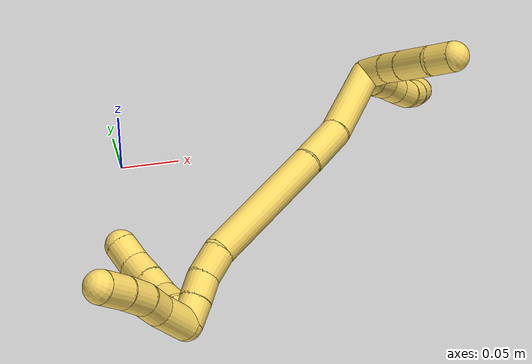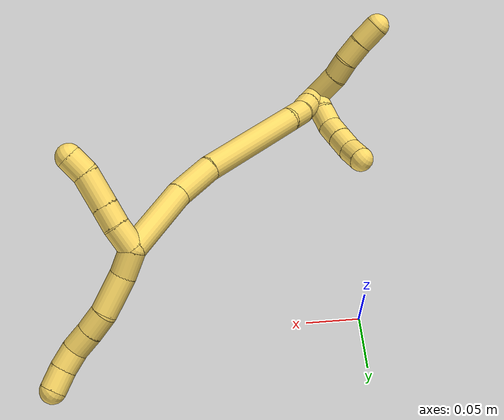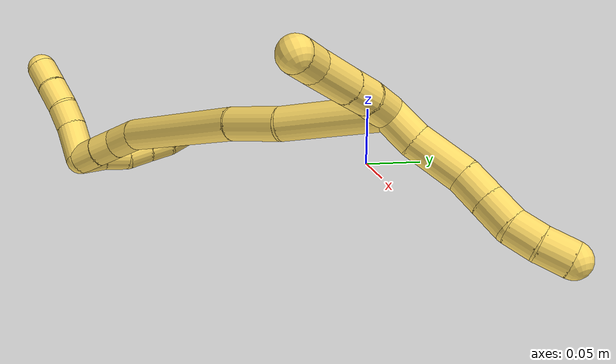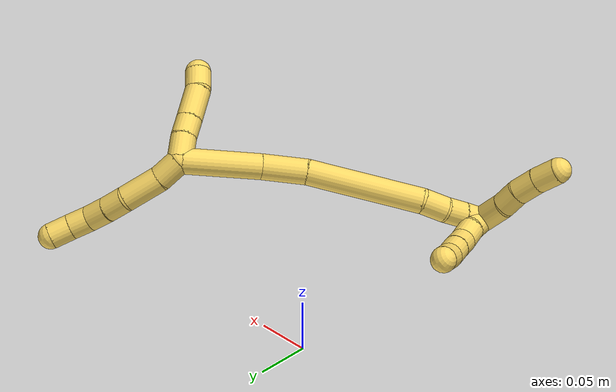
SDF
<sdf version="1.7">
 <world name="default">
  <model name="5">
   <static>0</static>
   <link name="5">
    <collision name="collision-cylinder-e_1_2_8">
     <pose>0.005663 0.001721 0.011517 -0.148357 0.452608 -0.034218</pose>
     <geometry><cylinder><radius>0.0125</radius><length>0.025898</length></cylinder></geometry>
     <surface>
      <friction><ode><mu>1.16</mu><mu2>1.16</mu2><slip1>0</slip1><slip2>0</slip2></ode></friction>
      <contact><ode><kp>1e+06</kp><kd>1</kd><max_vel>0</max_vel><min_depth>0.001</min_depth></ode></contact>
     </surface>
    </collision>
    <visual name="visual-cylinder-e_1_2_8">
     <pose>0.005663 0.001721 0.011517 -0.148357 0.452608 -0.034218</pose>
     <geometry><cylinder><radius>0.0125</radius><length>0.025898</length></cylinder></geometry>
     <material><ambient>1 0.858824 0.4 1</ambient></material>
    </visual>
    <collision name="collision-cylinder-e_2_8_9">
     <pose>0.018717 0.009569 0.039675 -0.352772 0.394938 -0.071292</pose>
     <geometry><cylinder><radius>0.0125</radius><length>0.038424</length></cylinder></geometry>
     <surface>
      <friction><ode><mu>1.16</mu><mu2>1.16</mu2><slip1>0</slip1><slip2>0</slip2></ode></friction>
      <contact><ode><kp>1e+06</kp><kd>1</kd><max_vel>0</max_vel><min_depth>0.001</min_depth></ode></contact>
     </surface>
    </collision>
    <visual name="visual-cylinder-e_2_8_9">
     <pose>0.018717 0.009569 0.039675 -0.352772 0.394938 -0.071292</pose>
     <geometry><cylinder><radius>0.0125</radius><length>0.038424</length></cylinder></geometry>
     <material><ambient>1 0.858824 0.4 1</ambient></material>
    </visual>
    <collision name="collision-cylinder-e_3_9_10">
     <pose>0.028204 0.018101 0.066926 -0.222913 0.190233 -0.021355</pose>
     <geometry><cylinder><radius>0.0125</radius><length>0.022157</length></cylinder></geometry>
     <surface>
      <friction><ode><mu>1.16</mu><mu2>1.16</mu2><slip1>0</slip1><slip2>0</slip2></ode></friction>
      <contact><ode><kp>1e+06</kp><kd>1</kd><max_vel>0</max_vel><min_depth>0.001</min_depth></ode></contact>
     </surface>
    </collision>
    <visual name="visual-cylinder-e_3_9_10">
     <pose>0.028204 0.018101 0.066926 -0.222913 0.190233 -0.021355</pose>
     <geometry><cylinder><radius>0.0125</radius><length>0.022157</length></cylinder></geometry>
     <material><ambient>1 0.858824 0.4 1</ambient></material>
    </visual>
    <collision name="collision-cylinder-e_4_10_11">
     <pose>0.031781 0.023088 0.088084 -0.240015 0.135666 -0.016384</pose>
     <geometry><cylinder><radius>0.0125</radius><length>0.021922</length></cylinder></geometry>
     <surface>
      <friction><ode><mu>1.16</mu><mu2>1.16</mu2><slip1>0</slip1><slip2>0</slip2></ode></friction>
      <contact><ode><kp>1e+06</kp><kd>1</kd><max_vel>0</max_vel><min_depth>0.001</min_depth></ode></contact>
     </surface>
    </collision>
    <visual name="visual-cylinder-e_4_10_11">
     <pose>0.031781 0.023088 0.088084 -0.240015 0.135666 -0.016384</pose>
     <geometry><cylinder><radius>0.0125</radius><length>0.021922</length></cylinder></geometry>
     <material><ambient>1 0.858824 0.4 1</ambient></material>
    </visual>
    <collision name="collision-cylinder-e_5_11_12">
     <pose>0.036603 0.029889 0.107235 -0.455993 0.335372 -0.078514</pose>
     <geometry><cylinder><radius>0.0125</radius><length>0.020294</length></cylinder></geometry>
     <surface>
      <friction><ode><mu>1.16</mu><mu2>1.16</mu2><slip1>0</slip1><slip2>0</slip2></ode></friction>
      <contact><ode><kp>1e+06</kp><kd>1</kd><max_vel>0</max_vel><min_depth>0.001</min_depth></ode></contact>
     </surface>
    </collision>
    <visual name="visual-cylinder-e_5_11_12">
     <pose>0.036603 0.029889 0.107235 -0.455993 0.335372 -0.078514</pose>
     <geometry><cylinder><radius>0.0125</radius><length>0.020294</length></cylinder></geometry>
     <material><ambient>1 0.858824 0.4 1</ambient></material>
    </visual>
    <collision name="collision-cylinder-e_6_12_6">
     <pose>0.044678 0.039058 0.123996 -0.54541 0.460575 -0.130949</pose>
     <geometry><cylinder><radius>0.0125</radius><length>0.021306</length></cylinder></geometry>
     <surface>
      <friction><ode><mu>1.16</mu><mu2>1.16</mu2><slip1>0</slip1><slip2>0</slip2></ode></friction>
      <contact><ode><kp>1e+06</kp><kd>1</kd><max_vel>0</max_vel><min_depth>0.001</min_depth></ode></contact>
     </surface>
    </collision>
    <visual name="visual-cylinder-e_6_12_6">
     <pose>0.044678 0.039058 0.123996 -0.54541 0.460575 -0.130949</pose>
     <geometry><cylinder><radius>0.0125</radius><length>0.021306</length></cylinder></geometry>
     <material><ambient>1 0.858824 0.4 1</ambient></material>
    </visual>
    <collision name="collision-cylinder-e_1_2_13">
     <pose>-0.012106 0.002435 -0.002234 -2.31314 -1.30435 2.0968</pose>
     <geometry><cylinder><radius>0.0125</radius><length>0.025097</length></cylinder></geometry>
     <surface>
      <friction><ode><mu>1.16</mu><mu2>1.16</mu2><slip1>0</slip1><slip2>0</slip2></ode></friction>
      <contact><ode><kp>1e+06</kp><kd>1</kd><max_vel>0</max_vel><min_depth>0.001</min_depth></ode></contact>
     </surface>
    </collision>
    <visual name="visual-cylinder-e_1_2_13">
     <pose>-0.012106 0.002435 -0.002234 -2.31314 -1.30435 2.0968</pose>
     <geometry><cylinder><radius>0.0125</radius><length>0.025097</length></cylinder></geometry>
     <material><ambient>1 0.858824 0.4 1</ambient></material>
    </visual>
    <collision name="collision-cylinder-e_2_13_14">
     <pose>-0.034068 0.005595 -0.006726 -2.83086 -1.33455 2.74909</pose>
     <geometry><cylinder><radius>0.0125</radius><length>0.020276</length></cylinder></geometry>
     <surface>
      <friction><ode><mu>1.16</mu><mu2>1.16</mu2><slip1>0</slip1><slip2>0</slip2></ode></friction>
      <contact><ode><kp>1e+06</kp><kd>1</kd><max_vel>0</max_vel><min_depth>0.001</min_depth></ode></contact>
     </surface>
    </collision>
    <visual name="visual-cylinder-e_2_13_14">
     <pose>-0.034068 0.005595 -0.006726 -2.83086 -1.33455 2.74909</pose>
     <geometry><cylinder><radius>0.0125</radius><length>0.020276</length></cylinder></geometry>
     <material><ambient>1 0.858824 0.4 1</ambient></material>
    </visual>
    <collision name="collision-cylinder-e_3_14_15">
     <pose>-0.060186 0.007753 -0.012731 -2.77625 -1.32904 2.67842</pose>
     <geometry><cylinder><radius>0.0125</radius><length>0.033499</length></cylinder></geometry>
     <surface>
      <friction><ode><mu>1.16</mu><mu2>1.16</mu2><slip1>0</slip1><slip2>0</slip2></ode></friction>
      <contact><ode><kp>1e+06</kp><kd>1</kd><max_vel>0</max_vel><min_depth>0.001</min_depth></ode></contact>
     </surface>
    </collision>
    <visual name="visual-cylinder-e_3_14_15">
     <pose>-0.060186 0.007753 -0.012731 -2.77625 -1.32904 2.67842</pose>
     <geometry><cylinder><radius>0.0125</radius><length>0.033499</length></cylinder></geometry>
     <material><ambient>1 0.858824 0.4 1</ambient></material>
    </visual>
    <collision name="collision-cylinder-e_4_15_5">
     <pose>-0.086731 0.011604 -0.01664 -1.63861 -1.33926 1.40578</pose>
     <geometry><cylinder><radius>0.0125</radius><length>0.021128</length></cylinder></geometry>
     <surface>
      <friction><ode><mu>1.16</mu><mu2>1.16</mu2><slip1>0</slip1><slip2>0</slip2></ode></friction>
      <contact><ode><kp>1e+06</kp><kd>1</kd><max_vel>0</max_vel><min_depth>0.001</min_depth></ode></contact>
     </surface>
    </collision>
    <visual name="visual-cylinder-e_4_15_5">
     <pose>-0.086731 0.011604 -0.01664 -1.63861 -1.33926 1.40578</pose>
     <geometry><cylinder><radius>0.0125</radius><length>0.021128</length></cylinder></geometry>
     <material><ambient>1 0.858824 0.4 1</ambient></material>
    </visual>
    <collision name="collision-cylinder-e_1_2_16">
     <pose>-0.010307 -0.033973 -0.016914 2.03274 -0.265193 -0.424321</pose>
     <geometry><cylinder><radius>0.0125</radius><length>0.07865</length></cylinder></geometry>
     <surface>
      <friction><ode><mu>1.16</mu><mu2>1.16</mu2><slip1>0</slip1><slip2>0</slip2></ode></friction>
      <contact><ode><kp>1e+06</kp><kd>1</kd><max_vel>0</max_vel><min_depth>0.001</min_depth></ode></contact>
     </surface>
    </collision>
    <visual name="visual-cylinder-e_1_2_16">
     <pose>-0.010307 -0.033973 -0.016914 2.03274 -0.265193 -0.424321</pose>
     <geometry><cylinder><radius>0.0125</radius><length>0.07865</length></cylinder></geometry>
     <material><ambient>1 0.858824 0.4 1</ambient></material>
    </visual>
    <collision name="collision-cylinder-e_2_16_17">
     <pose>-0.022938 -0.08613 -0.045754 2.15125 -0.106475 -0.196708</pose>
     <geometry><cylinder><radius>0.0125</radius><length>0.043741</length></cylinder></geometry>
     <surface>
      <friction><ode><mu>1.16</mu><mu2>1.16</mu2><slip1>0</slip1><slip2>0</slip2></ode></friction>
      <contact><ode><kp>1e+06</kp><kd>1</kd><max_vel>0</max_vel><min_depth>0.001</min_depth></ode></contact>
     </surface>
    </collision>
    <visual name="visual-cylinder-e_2_16_17">
     <pose>-0.022938 -0.08613 -0.045754 2.15125 -0.106475 -0.196708</pose>
     <geometry><cylinder><radius>0.0125</radius><length>0.043741</length></cylinder></geometry>
     <material><ambient>1 0.858824 0.4 1</ambient></material>
    </visual>
    <collision name="collision-cylinder-e_3_17_18">
     <pose>-0.02458 -0.153616 -0.085623 2.08642 0.012033 0.020651</pose>
     <geometry><cylinder><radius>0.0125</radius><length>0.113347</length></cylinder></geometry>
     <surface>
      <friction><ode><mu>1.16</mu><mu2>1.16</mu2><slip1>0</slip1><slip2>0</slip2></ode></friction>
      <contact><ode><kp>1e+06</kp><kd>1</kd><max_vel>0</max_vel><min_depth>0.001</min_depth></ode></contact>
     </surface>
    </collision>
    <visual name="visual-cylinder-e_3_17_18">
     <pose>-0.02458 -0.153616 -0.085623 2.08642 0.012033 0.020651</pose>
     <geometry><cylinder><radius>0.0125</radius><length>0.113347</length></cylinder></geometry>
     <material><ambient>1 0.858824 0.4 1</ambient></material>
    </visual>
    <collision name="collision-cylinder-e_4_18_19">
     <pose>-0.024424 -0.214479 -0.116949 1.85554 -0.04363 -0.058224</pose>
     <geometry><cylinder><radius>0.0125</radius><length>0.024116</length></cylinder></geometry>
     <surface>
      <friction><ode><mu>1.16</mu><mu2>1.16</mu2><slip1>0</slip1><slip2>0</slip2></ode></friction>
      <contact><ode><kp>1e+06</kp><kd>1</kd><max_vel>0</max_vel><min_depth>0.001</min_depth></ode></contact>
     </surface>
    </collision>
    <visual name="visual-cylinder-e_4_18_19">
     <pose>-0.024424 -0.214479 -0.116949 1.85554 -0.04363 -0.058224</pose>
     <geometry><cylinder><radius>0.0125</radius><length>0.024116</length></cylinder></geometry>
     <material><ambient>1 0.858824 0.4 1</ambient></material>
    </visual>
    <collision name="collision-cylinder-e_5_19_20">
     <pose>-0.027295 -0.235624 -0.122188 1.76206 -0.235723 -0.285127</pose>
     <geometry><cylinder><radius>0.0125</radius><length>0.020077</length></cylinder></geometry>
     <surface>
      <friction><ode><mu>1.16</mu><mu2>1.16</mu2><slip1>0</slip1><slip2>0</slip2></ode></friction>
      <contact><ode><kp>1e+06</kp><kd>1</kd><max_vel>0</max_vel><min_depth>0.001</min_depth></ode></contact>
     </surface>
    </collision>
    <visual name="visual-cylinder-e_5_19_20">
     <pose>-0.027295 -0.235624 -0.122188 1.76206 -0.235723 -0.285127</pose>
     <geometry><cylinder><radius>0.0125</radius><length>0.020077</length></cylinder></geometry>
     <material><ambient>1 0.858824 0.4 1</ambient></material>
    </visual>
    <collision name="collision-cylinder-e_6_20_1">
     <pose>-0.031558 -0.254858 -0.126009 1.77169 -0.192427 -0.235202</pose>
     <geometry><cylinder><radius>0.0125</radius><length>0.020069</length></cylinder></geometry>
     <surface>
      <friction><ode><mu>1.16</mu><mu2>1.16</mu2><slip1>0</slip1><slip2>0</slip2></ode></friction>
      <contact><ode><kp>1e+06</kp><kd>1</kd><max_vel>0</max_vel><min_depth>0.001</min_depth></ode></contact>
     </surface>
    </collision>
    <visual name="visual-cylinder-e_6_20_1">
     <pose>-0.031558 -0.254858 -0.126009 1.77169 -0.192427 -0.235202</pose>
     <geometry><cylinder><radius>0.0125</radius><length>0.020069</length></cylinder></geometry>
     <material><ambient>1 0.858824 0.4 1</ambient></material>
    </visual>
    <collision name="collision-cylinder-e_1_1_21">
     <pose>-0.024756 -0.259619 -0.127794 -1.53387 1.05945 -1.02753</pose>
     <geometry><cylinder><radius>0.0125</radius><length>0.02</length></cylinder></geometry>
     <surface>
      <friction><ode><mu>1.16</mu><mu2>1.16</mu2><slip1>0</slip1><slip2>0</slip2></ode></friction>
      <contact><ode><kp>1e+06</kp><kd>1</kd><max_vel>0</max_vel><min_depth>0.001</min_depth></ode></contact>
     </surface>
    </collision>
    <visual name="visual-cylinder-e_1_1_21">
     <pose>-0.024756 -0.259619 -0.127794 -1.53387 1.05945 -1.02753</pose>
     <geometry><cylinder><radius>0.0125</radius><length>0.02</length></cylinder></geometry>
     <material><ambient>1 0.858824 0.4 1</ambient></material>
    </visual>
    <collision name="collision-cylinder-e_2_21_22">
     <pose>-0.00666 -0.251388 -0.126648 -1.28938 1.21565 -0.963843</pose>
     <geometry><cylinder><radius>0.0125</radius><length>0.02</length></cylinder></geometry>
     <surface>
      <friction><ode><mu>1.16</mu><mu2>1.16</mu2><slip1>0</slip1><slip2>0</slip2></ode></friction>
      <contact><ode><kp>1e+06</kp><kd>1</kd><max_vel>0</max_vel><min_depth>0.001</min_depth></ode></contact>
     </surface>
    </collision>
    <visual name="visual-cylinder-e_2_21_22">
     <pose>-0.00666 -0.251388 -0.126648 -1.28938 1.21565 -0.963843</pose>
     <geometry><cylinder><radius>0.0125</radius><length>0.02</length></cylinder></geometry>
     <material><ambient>1 0.858824 0.4 1</ambient></material>
    </visual>
    <collision name="collision-cylinder-e_3_22_23">
     <pose>0.01139 -0.243341 -0.127297 -1.90127 1.04991 -1.3628</pose>
     <geometry><cylinder><radius>0.0125</radius><length>0.02</length></cylinder></geometry>
     <surface>
      <friction><ode><mu>1.16</mu><mu2>1.16</mu2><slip1>0</slip1><slip2>0</slip2></ode></friction>
      <contact><ode><kp>1e+06</kp><kd>1</kd><max_vel>0</max_vel><min_depth>0.001</min_depth></ode></contact>
     </surface>
    </collision>
    <visual name="visual-cylinder-e_3_22_23">
     <pose>0.01139 -0.243341 -0.127297 -1.90127 1.04991 -1.3628</pose>
     <geometry><cylinder><radius>0.0125</radius><length>0.02</length></cylinder></geometry>
     <material><ambient>1 0.858824 0.4 1</ambient></material>
    </visual>
    <collision name="collision-cylinder-e_4_23_24">
     <pose>0.028919 -0.23426 -0.130482 -1.91562 1.08749 -1.41993</pose>
     <geometry><cylinder><radius>0.0125</radius><length>0.02</length></cylinder></geometry>
     <surface>
      <friction><ode><mu>1.16</mu><mu2>1.16</mu2><slip1>0</slip1><slip2>0</slip2></ode></friction>
      <contact><ode><kp>1e+06</kp><kd>1</kd><max_vel>0</max_vel><min_depth>0.001</min_depth></ode></contact>
     </surface>
    </collision>
    <visual name="visual-cylinder-e_4_23_24">
     <pose>0.028919 -0.23426 -0.130482 -1.91562 1.08749 -1.41993</pose>
     <geometry><cylinder><radius>0.0125</radius><length>0.02</length></cylinder></geometry>
     <material><ambient>1 0.858824 0.4 1</ambient></material>
    </visual>
    <collision name="collision-cylinder-e_5_24_4">
     <pose>0.045562 -0.224433 -0.13515 -2.08722 0.892942 -1.37641</pose>
     <geometry><cylinder><radius>0.0125</radius><length>0.02</length></cylinder></geometry>
     <surface>
      <friction><ode><mu>1.16</mu><mu2>1.16</mu2><slip1>0</slip1><slip2>0</slip2></ode></friction>
      <contact><ode><kp>1e+06</kp><kd>1</kd><max_vel>0</max_vel><min_depth>0.001</min_depth></ode></contact>
     </surface>
    </collision>
    <visual name="visual-cylinder-e_5_24_4">
     <pose>0.045562 -0.224433 -0.13515 -2.08722 0.892942 -1.37641</pose>
     <geometry><cylinder><radius>0.0125</radius><length>0.02</length></cylinder></geometry>
     <material><ambient>1 0.858824 0.4 1</ambient></material>
    </visual>
    <collision name="collision-cylinder-e_1_1_25">
     <pose>-0.033556 -0.264341 -0.144006 -3.13108 -0.00491 0.87377</pose>
     <geometry><cylinder><radius>0.0125</radius><length>0.032065</length></cylinder></geometry>
     <surface>
      <friction><ode><mu>1.16</mu><mu2>1.16</mu2><slip1>0</slip1><slip2>0</slip2></ode></friction>
      <contact><ode><kp>1e+06</kp><kd>1</kd><max_vel>0</max_vel><min_depth>0.001</min_depth></ode></contact>
     </surface>
    </collision>
    <visual name="visual-cylinder-e_1_1_25">
     <pose>-0.033556 -0.264341 -0.144006 -3.13108 -0.00491 0.87377</pose>
     <geometry><cylinder><radius>0.0125</radius><length>0.032065</length></cylinder></geometry>
     <material><ambient>1 0.858824 0.4 1</ambient></material>
    </visual>
    <collision name="collision-cylinder-e_2_25_26">
     <pose>-0.035623 -0.263534 -0.170225 -3.07909 -0.192403 2.51502</pose>
     <geometry><cylinder><radius>0.0125</radius><length>0.020798</length></cylinder></geometry>
     <surface>
      <friction><ode><mu>1.16</mu><mu2>1.16</mu2><slip1>0</slip1><slip2>0</slip2></ode></friction>
      <contact><ode><kp>1e+06</kp><kd>1</kd><max_vel>0</max_vel><min_depth>0.001</min_depth></ode></contact>
     </surface>
    </collision>
    <visual name="visual-cylinder-e_2_25_26">
     <pose>-0.035623 -0.263534 -0.170225 -3.07909 -0.192403 2.51502</pose>
     <geometry><cylinder><radius>0.0125</radius><length>0.020798</length></cylinder></geometry>
     <material><ambient>1 0.858824 0.4 1</ambient></material>
    </visual>
    <collision name="collision-cylinder-e_3_26_27">
     <pose>-0.039125 -0.264253 -0.191897 3.02406 -0.130106 -1.67247</pose>
     <geometry><cylinder><radius>0.0125</radius><length>0.023326</length></cylinder></geometry>
     <surface>
      <friction><ode><mu>1.16</mu><mu2>1.16</mu2><slip1>0</slip1><slip2>0</slip2></ode></friction>
      <contact><ode><kp>1e+06</kp><kd>1</kd><max_vel>0</max_vel><min_depth>0.001</min_depth></ode></contact>
     </surface>
    </collision>
    <visual name="visual-cylinder-e_3_26_27">
     <pose>-0.039125 -0.264253 -0.191897 3.02406 -0.130106 -1.67247</pose>
     <geometry><cylinder><radius>0.0125</radius><length>0.023326</length></cylinder></geometry>
     <material><ambient>1 0.858824 0.4 1</ambient></material>
    </visual>
    <collision name="collision-cylinder-e_4_27_3">
     <pose>-0.04138 -0.267744 -0.21507 2.96091 -0.062364 -0.663219</pose>
     <geometry><cylinder><radius>0.0125</radius><length>0.02381</length></cylinder></geometry>
     <surface>
      <friction><ode><mu>1.16</mu><mu2>1.16</mu2><slip1>0</slip1><slip2>0</slip2></ode></friction>
      <contact><ode><kp>1e+06</kp><kd>1</kd><max_vel>0</max_vel><min_depth>0.001</min_depth></ode></contact>
     </surface>
    </collision>
    <visual name="visual-cylinder-e_4_27_3">
     <pose>-0.04138 -0.267744 -0.21507 2.96091 -0.062364 -0.663219</pose>
     <geometry><cylinder><radius>0.0125</radius><length>0.02381</length></cylinder></geometry>
     <material><ambient>1 0.858824 0.4 1</ambient></material>
    </visual>
    <collision name="collision-sphere-3">
     <pose>-0.042122 -0.26988 -0.226759 0 -0 0</pose>
     <geometry><sphere><radius>0.0125</radius></sphere></geometry>
     <surface>
      <friction><ode><mu>1.16</mu><mu2>1.16</mu2><slip1>0</slip1><slip2>0</slip2></ode></friction>
      <contact><ode><kp>1e+06</kp><kd>1</kd><max_vel>0</max_vel><min_depth>0.001</min_depth></ode></contact>
     </surface>
    </collision>
    <visual name="visual-sphere-3">
     <pose>-0.042122 -0.26988 -0.226759 0 -0 0</pose>
     <geometry><sphere><radius>0.0125</radius></sphere></geometry>
     <material><ambient>1 0.858824 0.4 1</ambient></material>
    </visual>
    <collision name="collision-sphere-27">
     <pose>-0.040638 -0.265609 -0.203382 0 -0 0</pose>
     <geometry><sphere><radius>0.0125</radius></sphere></geometry>
     <surface>
      <friction><ode><mu>1.16</mu><mu2>1.16</mu2><slip1>0</slip1><slip2>0</slip2></ode></friction>
      <contact><ode><kp>1e+06</kp><kd>1</kd><max_vel>0</max_vel><min_depth>0.001</min_depth></ode></contact>
     </surface>
    </collision>
    <visual name="visual-sphere-27">
     <pose>-0.040638 -0.265609 -0.203382 0 -0 0</pose>
     <geometry><sphere><radius>0.0125</radius></sphere></geometry>
     <material><ambient>1 0.858824 0.4 1</ambient></material>
    </visual>
    <collision name="collision-sphere-26">
     <pose>-0.037612 -0.262897 -0.180412 0 -0 0</pose>
     <geometry><sphere><radius>0.0125</radius></sphere></geometry>
     <surface>
      <friction><ode><mu>1.16</mu><mu2>1.16</mu2><slip1>0</slip1><slip2>0</slip2></ode></friction>
      <contact><ode><kp>1e+06</kp><kd>1</kd><max_vel>0</max_vel><min_depth>0.001</min_depth></ode></contact>
     </surface>
    </collision>
    <visual name="visual-sphere-26">
     <pose>-0.037612 -0.262897 -0.180412 0 -0 0</pose>
     <geometry><sphere><radius>0.0125</radius></sphere></geometry>
     <material><ambient>1 0.858824 0.4 1</ambient></material>
    </visual>
    <collision name="collision-sphere-25">
     <pose>-0.033635 -0.264172 -0.160037 0 -0 0</pose>
     <geometry><sphere><radius>0.0125</radius></sphere></geometry>
     <surface>
      <friction><ode><mu>1.16</mu><mu2>1.16</mu2><slip1>0</slip1><slip2>0</slip2></ode></friction>
      <contact><ode><kp>1e+06</kp><kd>1</kd><max_vel>0</max_vel><min_depth>0.001</min_depth></ode></contact>
     </surface>
    </collision>
    <visual name="visual-sphere-25">
     <pose>-0.033635 -0.264172 -0.160037 0 -0 0</pose>
     <geometry><sphere><radius>0.0125</radius></sphere></geometry>
     <material><ambient>1 0.858824 0.4 1</ambient></material>
    </visual>
    <collision name="collision-sphere-4">
     <pose>0.053352 -0.218979 -0.138246 0 -0 0</pose>
     <geometry><sphere><radius>0.0125</radius></sphere></geometry>
     <surface>
      <friction><ode><mu>1.16</mu><mu2>1.16</mu2><slip1>0</slip1><slip2>0</slip2></ode></friction>
      <contact><ode><kp>1e+06</kp><kd>1</kd><max_vel>0</max_vel><min_depth>0.001</min_depth></ode></contact>
     </surface>
    </collision>
    <visual name="visual-sphere-4">
     <pose>0.053352 -0.218979 -0.138246 0 -0 0</pose>
     <geometry><sphere><radius>0.0125</radius></sphere></geometry>
     <material><ambient>1 0.858824 0.4 1</ambient></material>
    </visual>
    <collision name="collision-sphere-24">
     <pose>0.037773 -0.229886 -0.132053 0 -0 0</pose>
     <geometry><sphere><radius>0.0125</radius></sphere></geometry>
     <surface>
      <friction><ode><mu>1.16</mu><mu2>1.16</mu2><slip1>0</slip1><slip2>0</slip2></ode></friction>
      <contact><ode><kp>1e+06</kp><kd>1</kd><max_vel>0</max_vel><min_depth>0.001</min_depth></ode></contact>
     </surface>
    </collision>
    <visual name="visual-sphere-24">
     <pose>0.037773 -0.229886 -0.132053 0 -0 0</pose>
     <geometry><sphere><radius>0.0125</radius></sphere></geometry>
     <material><ambient>1 0.858824 0.4 1</ambient></material>
    </visual>
    <collision name="collision-sphere-23">
     <pose>0.020064 -0.238633 -0.128912 0 -0 0</pose>
     <geometry><sphere><radius>0.0125</radius></sphere></geometry>
     <surface>
      <friction><ode><mu>1.16</mu><mu2>1.16</mu2><slip1>0</slip1><slip2>0</slip2></ode></friction>
      <contact><ode><kp>1e+06</kp><kd>1</kd><max_vel>0</max_vel><min_depth>0.001</min_depth></ode></contact>
     </surface>
    </collision>
    <visual name="visual-sphere-23">
     <pose>0.020064 -0.238633 -0.128912 0 -0 0</pose>
     <geometry><sphere><radius>0.0125</radius></sphere></geometry>
     <material><ambient>1 0.858824 0.4 1</ambient></material>
    </visual>
    <collision name="collision-sphere-22">
     <pose>0.002716 -0.248048 -0.125682 0 -0 0</pose>
     <geometry><sphere><radius>0.0125</radius></sphere></geometry>
     <surface>
      <friction><ode><mu>1.16</mu><mu2>1.16</mu2><slip1>0</slip1><slip2>0</slip2></ode></friction>
      <contact><ode><kp>1e+06</kp><kd>1</kd><max_vel>0</max_vel><min_depth>0.001</min_depth></ode></contact>
     </surface>
    </collision>
    <visual name="visual-sphere-22">
     <pose>0.002716 -0.248048 -0.125682 0 -0 0</pose>
     <geometry><sphere><radius>0.0125</radius></sphere></geometry>
     <material><ambient>1 0.858824 0.4 1</ambient></material>
    </visual>
    <collision name="collision-sphere-21">
     <pose>-0.016036 -0.254729 -0.127613 0 -0 0</pose>
     <geometry><sphere><radius>0.0125</radius></sphere></geometry>
     <surface>
      <friction><ode><mu>1.16</mu><mu2>1.16</mu2><slip1>0</slip1><slip2>0</slip2></ode></friction>
      <contact><ode><kp>1e+06</kp><kd>1</kd><max_vel>0</max_vel><min_depth>0.001</min_depth></ode></contact>
     </surface>
    </collision>
    <visual name="visual-sphere-21">
     <pose>-0.016036 -0.254729 -0.127613 0 -0 0</pose>
     <geometry><sphere><radius>0.0125</radius></sphere></geometry>
     <material><ambient>1 0.858824 0.4 1</ambient></material>
    </visual>
    <collision name="collision-sphere-1">
     <pose>-0.033477 -0.264509 -0.127975 0 -0 0</pose>
     <geometry><sphere><radius>0.0125</radius></sphere></geometry>
     <surface>
      <friction><ode><mu>1.16</mu><mu2>1.16</mu2><slip1>0</slip1><slip2>0</slip2></ode></friction>
      <contact><ode><kp>1e+06</kp><kd>1</kd><max_vel>0</max_vel><min_depth>0.001</min_depth></ode></contact>
     </surface>
    </collision>
    <visual name="visual-sphere-1">
     <pose>-0.033477 -0.264509 -0.127975 0 -0 0</pose>
     <geometry><sphere><radius>0.0125</radius></sphere></geometry>
     <material><ambient>1 0.858824 0.4 1</ambient></material>
    </visual>
    <collision name="collision-sphere-12">
     <pose>0.039943 0.034108 0.115838 0 -0 0</pose>
     <geometry><sphere><radius>0.0125</radius></sphere></geometry>
     <surface>
      <friction><ode><mu>1.16</mu><mu2>1.16</mu2><slip1>0</slip1><slip2>0</slip2></ode></friction>
      <contact><ode><kp>1e+06</kp><kd>1</kd><max_vel>0</max_vel><min_depth>0.001</min_depth></ode></contact>
     </surface>
    </collision>
    <visual name="visual-sphere-12">
     <pose>0.039943 0.034108 0.115838 0 -0 0</pose>
     <geometry><sphere><radius>0.0125</radius></sphere></geometry>
     <material><ambient>1 0.858824 0.4 1</ambient></material>
    </visual>
    <collision name="collision-sphere-11">
     <pose>0.033264 0.025669 0.098633 0 -0 0</pose>
     <geometry><sphere><radius>0.0125</radius></sphere></geometry>
     <surface>
      <friction><ode><mu>1.16</mu><mu2>1.16</mu2><slip1>0</slip1><slip2>0</slip2></ode></friction>
      <contact><ode><kp>1e+06</kp><kd>1</kd><max_vel>0</max_vel><min_depth>0.001</min_depth></ode></contact>
     </surface>
    </collision>
    <visual name="visual-sphere-11">
     <pose>0.033264 0.025669 0.098633 0 -0 0</pose>
     <geometry><sphere><radius>0.0125</radius></sphere></geometry>
     <material><ambient>1 0.858824 0.4 1</ambient></material>
    </visual>
    <collision name="collision-sphere-10">
     <pose>0.030299 0.020506 0.077535 0 -0 0</pose>
     <geometry><sphere><radius>0.0125</radius></sphere></geometry>
     <surface>
      <friction><ode><mu>1.16</mu><mu2>1.16</mu2><slip1>0</slip1><slip2>0</slip2></ode></friction>
      <contact><ode><kp>1e+06</kp><kd>1</kd><max_vel>0</max_vel><min_depth>0.001</min_depth></ode></contact>
     </surface>
    </collision>
    <visual name="visual-sphere-10">
     <pose>0.030299 0.020506 0.077535 0 -0 0</pose>
     <geometry><sphere><radius>0.0125</radius></sphere></geometry>
     <material><ambient>1 0.858824 0.4 1</ambient></material>
    </visual>
    <collision name="collision-sphere-9">
     <pose>0.026109 0.015696 0.056316 0 -0 0</pose>
     <geometry><sphere><radius>0.0125</radius></sphere></geometry>
     <surface>
      <friction><ode><mu>1.16</mu><mu2>1.16</mu2><slip1>0</slip1><slip2>0</slip2></ode></friction>
      <contact><ode><kp>1e+06</kp><kd>1</kd><max_vel>0</max_vel><min_depth>0.001</min_depth></ode></contact>
     </surface>
    </collision>
    <visual name="visual-sphere-9">
     <pose>0.026109 0.015696 0.056316 0 -0 0</pose>
     <geometry><sphere><radius>0.0125</radius></sphere></geometry>
     <material><ambient>1 0.858824 0.4 1</ambient></material>
    </visual>
    <collision name="collision-sphere-2">
     <geometry><sphere><radius>0.0125</radius></sphere></geometry>
     <surface>
      <friction><ode><mu>1.16</mu><mu2>1.16</mu2><slip1>0</slip1><slip2>0</slip2></ode></friction>
      <contact><ode><kp>1e+06</kp><kd>1</kd><max_vel>0</max_vel><min_depth>0.001</min_depth></ode></contact>
     </surface>
    </collision>
    <visual name="visual-sphere-2">
     <geometry><sphere><radius>0.0125</radius></sphere></geometry>
     <material><ambient>1 0.858824 0.4 1</ambient></material>
    </visual>
    <collision name="collision-sphere-19">
     <pose>-0.02495 -0.226041 -0.120333 0 -0 0</pose>
     <geometry><sphere><radius>0.0125</radius></sphere></geometry>
     <surface>
      <friction><ode><mu>1.16</mu><mu2>1.16</mu2><slip1>0</slip1><slip2>0</slip2></ode></friction>
      <contact><ode><kp>1e+06</kp><kd>1</kd><max_vel>0</max_vel><min_depth>0.001</min_depth></ode></contact>
     </surface>
    </collision>
    <visual name="visual-sphere-19">
     <pose>-0.02495 -0.226041 -0.120333 0 -0 0</pose>
     <geometry><sphere><radius>0.0125</radius></sphere></geometry>
     <material><ambient>1 0.858824 0.4 1</ambient></material>
    </visual>
    <collision name="collision-sphere-8">
     <pose>0.011325 0.003443 0.023034 0 -0 0</pose>
     <geometry><sphere><radius>0.0125</radius></sphere></geometry>
     <surface>
      <friction><ode><mu>1.16</mu><mu2>1.16</mu2><slip1>0</slip1><slip2>0</slip2></ode></friction>
      <contact><ode><kp>1e+06</kp><kd>1</kd><max_vel>0</max_vel><min_depth>0.001</min_depth></ode></contact>
     </surface>
    </collision>
    <visual name="visual-sphere-8">
     <pose>0.011325 0.003443 0.023034 0 -0 0</pose>
     <geometry><sphere><radius>0.0125</radius></sphere></geometry>
     <material><ambient>1 0.858824 0.4 1</ambient></material>
    </visual>
    <collision name="collision-sphere-6">
     <pose>0.049412 0.044009 0.132155 0 -0 0</pose>
     <geometry><sphere><radius>0.0125</radius></sphere></geometry>
     <surface>
      <friction><ode><mu>1.16</mu><mu2>1.16</mu2><slip1>0</slip1><slip2>0</slip2></ode></friction>
      <contact><ode><kp>1e+06</kp><kd>1</kd><max_vel>0</max_vel><min_depth>0.001</min_depth></ode></contact>
     </surface>
    </collision>
    <visual name="visual-sphere-6">
     <pose>0.049412 0.044009 0.132155 0 -0 0</pose>
     <geometry><sphere><radius>0.0125</radius></sphere></geometry>
     <material><ambient>1 0.858824 0.4 1</ambient></material>
    </visual>
    <collision name="collision-sphere-13">
     <pose>-0.024211 0.004869 -0.004467 0 -0 0</pose>
     <geometry><sphere><radius>0.0125</radius></sphere></geometry>
     <surface>
      <friction><ode><mu>1.16</mu><mu2>1.16</mu2><slip1>0</slip1><slip2>0</slip2></ode></friction>
      <contact><ode><kp>1e+06</kp><kd>1</kd><max_vel>0</max_vel><min_depth>0.001</min_depth></ode></contact>
     </surface>
    </collision>
    <visual name="visual-sphere-13">
     <pose>-0.024211 0.004869 -0.004467 0 -0 0</pose>
     <geometry><sphere><radius>0.0125</radius></sphere></geometry>
     <material><ambient>1 0.858824 0.4 1</ambient></material>
    </visual>
    <collision name="collision-sphere-14">
     <pose>-0.043924 0.00632 -0.008985 0 -0 0</pose>
     <geometry><sphere><radius>0.0125</radius></sphere></geometry>
     <surface>
      <friction><ode><mu>1.16</mu><mu2>1.16</mu2><slip1>0</slip1><slip2>0</slip2></ode></friction>
      <contact><ode><kp>1e+06</kp><kd>1</kd><max_vel>0</max_vel><min_depth>0.001</min_depth></ode></contact>
     </surface>
    </collision>
    <visual name="visual-sphere-14">
     <pose>-0.043924 0.00632 -0.008985 0 -0 0</pose>
     <geometry><sphere><radius>0.0125</radius></sphere></geometry>
     <material><ambient>1 0.858824 0.4 1</ambient></material>
    </visual>
    <collision name="collision-sphere-15">
     <pose>-0.076449 0.009186 -0.016476 0 -0 0</pose>
     <geometry><sphere><radius>0.0125</radius></sphere></geometry>
     <surface>
      <friction><ode><mu>1.16</mu><mu2>1.16</mu2><slip1>0</slip1><slip2>0</slip2></ode></friction>
      <contact><ode><kp>1e+06</kp><kd>1</kd><max_vel>0</max_vel><min_depth>0.001</min_depth></ode></contact>
     </surface>
    </collision>
    <visual name="visual-sphere-15">
     <pose>-0.076449 0.009186 -0.016476 0 -0 0</pose>
     <geometry><sphere><radius>0.0125</radius></sphere></geometry>
     <material><ambient>1 0.858824 0.4 1</ambient></material>
    </visual>
    <collision name="collision-sphere-5">
     <pose>-0.097013 0.014023 -0.016805 0 -0 0</pose>
     <geometry><sphere><radius>0.0125</radius></sphere></geometry>
     <surface>
      <friction><ode><mu>1.16</mu><mu2>1.16</mu2><slip1>0</slip1><slip2>0</slip2></ode></friction>
      <contact><ode><kp>1e+06</kp><kd>1</kd><max_vel>0</max_vel><min_depth>0.001</min_depth></ode></contact>
     </surface>
    </collision>
    <visual name="visual-sphere-5">
     <pose>-0.097013 0.014023 -0.016805 0 -0 0</pose>
     <geometry><sphere><radius>0.0125</radius></sphere></geometry>
     <material><ambient>1 0.858824 0.4 1</ambient></material>
    </visual>
    <collision name="collision-sphere-16">
     <pose>-0.020614 -0.067945 -0.033828 0 -0 0</pose>
     <geometry><sphere><radius>0.0125</radius></sphere></geometry>
     <surface>
      <friction><ode><mu>1.16</mu><mu2>1.16</mu2><slip1>0</slip1><slip2>0</slip2></ode></friction>
      <contact><ode><kp>1e+06</kp><kd>1</kd><max_vel>0</max_vel><min_depth>0.001</min_depth></ode></contact>
     </surface>
    </collision>
    <visual name="visual-sphere-16">
     <pose>-0.020614 -0.067945 -0.033828 0 -0 0</pose>
     <geometry><sphere><radius>0.0125</radius></sphere></geometry>
     <material><ambient>1 0.858824 0.4 1</ambient></material>
    </visual>
    <collision name="collision-sphere-17">
     <pose>-0.025262 -0.104315 -0.05768 0 -0 0</pose>
     <geometry><sphere><radius>0.0125</radius></sphere></geometry>
     <surface>
      <friction><ode><mu>1.16</mu><mu2>1.16</mu2><slip1>0</slip1><slip2>0</slip2></ode></friction>
      <contact><ode><kp>1e+06</kp><kd>1</kd><max_vel>0</max_vel><min_depth>0.001</min_depth></ode></contact>
     </surface>
    </collision>
    <visual name="visual-sphere-17">
     <pose>-0.025262 -0.104315 -0.05768 0 -0 0</pose>
     <geometry><sphere><radius>0.0125</radius></sphere></geometry>
     <material><ambient>1 0.858824 0.4 1</ambient></material>
    </visual>
    <collision name="collision-sphere-18">
     <pose>-0.023898 -0.202918 -0.113565 0 -0 0</pose>
     <geometry><sphere><radius>0.0125</radius></sphere></geometry>
     <surface>
      <friction><ode><mu>1.16</mu><mu2>1.16</mu2><slip1>0</slip1><slip2>0</slip2></ode></friction>
      <contact><ode><kp>1e+06</kp><kd>1</kd><max_vel>0</max_vel><min_depth>0.001</min_depth></ode></contact>
     </surface>
    </collision>
    <visual name="visual-sphere-18">
     <pose>-0.023898 -0.202918 -0.113565 0 -0 0</pose>
     <geometry><sphere><radius>0.0125</radius></sphere></geometry>
     <material><ambient>1 0.858824 0.4 1</ambient></material>
    </visual>
    <collision name="collision-sphere-20">
     <pose>-0.029639 -0.245207 -0.124044 0 -0 0</pose>
     <geometry><sphere><radius>0.0125</radius></sphere></geometry>
     <surface>
      <friction><ode><mu>1.16</mu><mu2>1.16</mu2><slip1>0</slip1><slip2>0</slip2></ode></friction>
      <contact><ode><kp>1e+06</kp><kd>1</kd><max_vel>0</max_vel><min_depth>0.001</min_depth></ode></contact>
     </surface>
    </collision>
    <visual name="visual-sphere-20">
     <pose>-0.029639 -0.245207 -0.124044 0 -0 0</pose>
     <geometry><sphere><radius>0.0125</radius></sphere></geometry>
     <material><ambient>1 0.858824 0.4 1</ambient></material>
    </visual>
    <inertial>
     <pose>-0.013276 -0.114918 -0.05661 0 -0 0</pose>
     <mass>0.75</mass>
     <inertia>
      <ixx>0.000175</ixx>
      <ixy>0</ixy>
      <ixz>0</ixz>
      <iyy>-8.6e-05</iyy>
      <iyz>0</iyz>
      <izz>0.000151</izz>
     </inertia>
    </inertial>
   </link>
   <pose>0.206006 -0.04332 0.089616 2.39688 0.269397 2.19705</pose>
  </model>
 </world>
</sdf>
